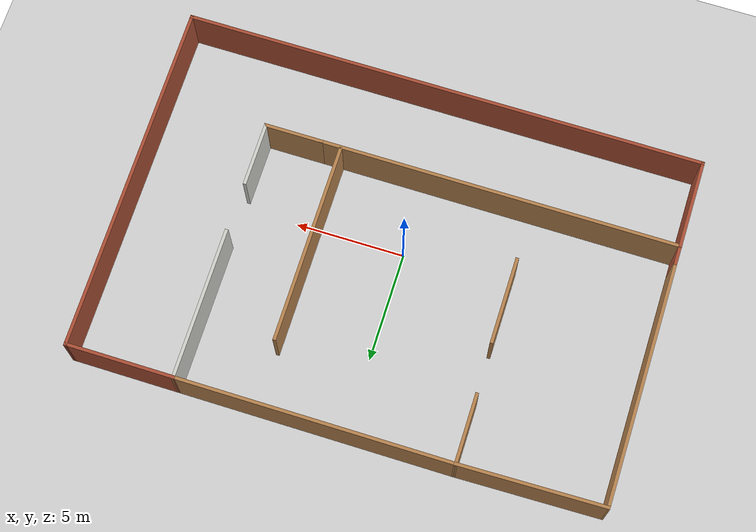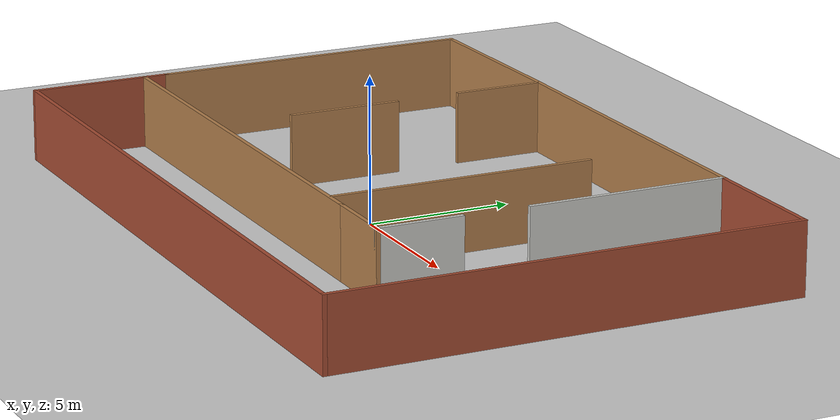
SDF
<sdf version="1.6">
 <world name="default">
  <light name="sun" type="directional">
   <pose>0 0 10 0 -0 0</pose>
   <diffuse>0.8 0.8 0.8 1</diffuse>
   <specular>0.2 0.2 0.2 1</specular>
   <attenuation>
    <range>1000</range>
    <constant>0.9</constant>
    <linear>0.01</linear>
    <quadratic>0.001</quadratic>
   </attenuation>
   <direction>-0.5 0.1 -0.9</direction>
  </light>
  <model name="ground_plane">
   <static>1</static>
   <link name="link">
    <collision name="collision">
     <geometry><plane><normal>0 0 1</normal><size>100 100</size></plane></geometry>
     <surface>
      <contact><collide_bitmask>65535</collide_bitmask></contact>
      <friction><ode><mu>100</mu><mu2>50</mu2></ode></friction>
     </surface>
    </collision>
    <visual name="visual">
     <cast_shadows>0</cast_shadows>
     <geometry><plane><normal>0 0 1</normal><size>100 100</size></plane></geometry>
     <material>
      <script><uri>file://media/materials/scripts/gazebo.material</uri><name>Gazebo/Grey</name></script>
     </material>
    </visual>
   </link>
  </model>
  <gravity>0 0 -9.8</gravity>
  <magnetic_field>6e-06 2.3e-05 -4.2e-05</magnetic_field>
  <atmosphere type="adiabatic"/>
  <physics name="default_physics" default="0" type="ode">
   <max_step_size>0.001</max_step_size>
   <real_time_factor>1</real_time_factor>
   <real_time_update_rate>1000</real_time_update_rate>
  </physics>
  <scene><ambient>0.4 0.4 0.4 1</ambient><background>0.7 0.7 0.7 1</background><shadows>1</shadows></scene>
  <audio><device>default</device></audio>
  <spherical_coordinates>
   <surface_model>EARTH_WGS84</surface_model>
   <latitude_deg>0</latitude_deg>
   <longitude_deg>0</longitude_deg>
   <elevation>0</elevation>
   <heading_deg>0</heading_deg>
  </spherical_coordinates>
  <model name="Room">
   <pose>0.39523 0.775951 0 0 -0 0</pose>
   <link name="Wall_11">
    <collision name="Wall_11_Collision">
     <geometry><box><size>7 0.15 2.5</size></box></geometry>
     <pose>0 0 1.25 0 -0 0</pose>
    </collision>
    <visual name="Wall_11_Visual">
     <pose>0 0 1.25 0 -0 0</pose>
     <geometry><box><size>7 0.15 2.5</size></box></geometry>
     <material>
      <script><uri>file://media/materials/scripts/gazebo.material</uri><name>Gazebo/CeilingTiled</name></script>
      <ambient>1 1 1 1</ambient>
     </material>
     <meta><layer>0</layer></meta>
    </visual>
    <pose>7.07641 4.62496 0 0 -0 1.5708</pose>
   </link>
   <link name="Wall_24">
    <collision name="Wall_24_Collision">
     <geometry><box><size>3.25 0.15 2.5</size></box></geometry>
     <pose>0 0 1.25 0 -0 0</pose>
    </collision>
    <visual name="Wall_24_Visual">
     <pose>0 0 1.25 0 -0 0</pose>
     <geometry><box><size>3.25 0.15 2.5</size></box></geometry>
     <material>
      <script><uri>file://media/materials/scripts/gazebo.material</uri><name>Gazebo/Wood</name></script>
      <ambient>1 1 1 1</ambient>
     </material>
     <meta><layer>0</layer></meta>
    </visual>
    <pose>-5.3839 6.48695 0 0 -0 -1.5708</pose>
   </link>
   <link name="Wall_26">
    <collision name="Wall_26_Collision">
     <geometry><box><size>4 0.15 2.5</size></box></geometry>
     <pose>0 0 1.25 0 -0 0</pose>
    </collision>
    <visual name="Wall_26_Visual">
     <pose>0 0 1.25 0 -0 0</pose>
     <geometry><box><size>4 0.15 2.5</size></box></geometry>
     <material>
      <script><uri>file://media/materials/scripts/gazebo.material</uri><name>Gazebo/Wood</name></script>
      <ambient>1 1 1 1</ambient>
     </material>
     <meta><layer>0</layer></meta>
    </visual>
    <pose>-5.34345 0.609995 0 0 -0 -1.5708</pose>
   </link>
   <link name="Wall_28">
    <collision name="Wall_28_Collision">
     <geometry><box><size>5 0.15 2.5</size></box></geometry>
     <pose>0 0 1.25 0 -0 0</pose>
    </collision>
    <visual name="Wall_28_Visual">
     <pose>0 0 1.25 0 -0 0</pose>
     <geometry><box><size>5 0.15 2.5</size></box></geometry>
     <material>
      <script><uri>file://media/materials/scripts/gazebo.material</uri><name>Gazebo/Bricks</name></script>
      <ambient>1 1 1 1</ambient>
     </material>
     <meta><layer>0</layer></meta>
    </visual>
    <pose>9.50141 8.04996 0 0 -0 0</pose>
   </link>
   <link name="Wall_29">
    <collision name="Wall_29_Collision">
     <geometry><box><size>16.25 0.15 2.5</size></box></geometry>
     <pose>0 0 1.25 0 -0 0</pose>
    </collision>
    <visual name="Wall_29_Visual">
     <pose>0 0 1.25 0 -0 0</pose>
     <geometry><box><size>16.25 0.15 2.5</size></box></geometry>
     <material>
      <script><uri>file://media/materials/scripts/gazebo.material</uri><name>Gazebo/Bricks</name></script>
      <ambient>1 1 1 1</ambient>
     </material>
     <meta><layer>0</layer></meta>
    </visual>
    <pose>11.9264 -3.9e-05 0 0 -0 -1.5708</pose>
   </link>
   <link name="Wall_30">
    <collision name="Wall_30_Collision">
     <geometry><box><size>24 0.15 2.5</size></box></geometry>
     <pose>0 0 1.25 0 -0 0</pose>
    </collision>
    <visual name="Wall_30_Visual">
     <pose>0 0 1.25 0 -0 0</pose>
     <geometry><box><size>24 0.15 2.5</size></box></geometry>
     <material>
      <script><uri>file://media/materials/scripts/gazebo.material</uri><name>Gazebo/Bricks</name></script>
      <ambient>1 1 1 1</ambient>
     </material>
     <meta><layer>0</layer></meta>
    </visual>
    <pose>0.001414 -8.05004 0 0 -0 3.14159</pose>
   </link>
   <link name="Wall_31">
    <collision name="Wall_31_Collision">
     <geometry><box><size>5 0.15 2.5</size></box></geometry>
     <pose>0 0 1.25 0 -0 0</pose>
    </collision>
    <visual name="Wall_31_Visual">
     <pose>0 0 1.25 0 -0 0</pose>
     <geometry><box><size>5 0.15 2.5</size></box></geometry>
     <material>
      <script><uri>file://media/materials/scripts/gazebo.material</uri><name>Gazebo/Bricks</name></script>
      <ambient>1 1 1 1</ambient>
     </material>
     <meta><layer>0</layer></meta>
    </visual>
    <pose>-11.9236 -5.62504 0 0 -0 1.5708</pose>
   </link>
   <link name="Wall_37">
    <collision name="Wall_37_Collision">
     <geometry><box><size>11.25 0.15 2.5</size></box></geometry>
     <pose>0 0 1.25 0 -0 0</pose>
    </collision>
    <visual name="Wall_37_Visual">
     <pose>0 0 1.25 0 -0 0</pose>
     <geometry><box><size>11.25 0.15 2.5</size></box></geometry>
     <material>
      <script><uri>file://media/materials/scripts/gazebo.material</uri><name>Gazebo/Wood</name></script>
      <ambient>1 1 1 1</ambient>
     </material>
     <meta><layer>0</layer></meta>
    </visual>
    <pose>-11.9236 2.34996 0 0 -0 1.5708</pose>
   </link>
   <link name="Wall_38">
    <collision name="Wall_38_Collision">
     <geometry><box><size>6.69112 0.15 2.5</size></box></geometry>
     <pose>0 0 1.25 0 -0 0</pose>
    </collision>
    <visual name="Wall_38_Visual">
     <pose>0 0 1.25 0 -0 0</pose>
     <geometry><box><size>6.69112 0.15 2.5</size></box></geometry>
     <material>
      <script><uri>file://media/materials/scripts/gazebo.material</uri><name>Gazebo/Wood</name></script>
      <ambient>1 1 1 1</ambient>
     </material>
     <meta><layer>0</layer></meta>
    </visual>
    <pose>-8.65375 7.96846 0 0 -0 0.020945</pose>
   </link>
   <link name="Wall_39">
    <collision name="Wall_39_Collision">
     <geometry><box><size>12.6103 0.15 2.5</size></box></geometry>
     <pose>0 0 1.25 0 -0 0</pose>
    </collision>
    <visual name="Wall_39_Visual">
     <pose>0 0 1.25 0 -0 0</pose>
     <geometry><box><size>12.6103 0.15 2.5</size></box></geometry>
     <material>
      <script><uri>file://media/materials/scripts/gazebo.material</uri><name>Gazebo/Wood</name></script>
      <ambient>1 1 1 1</ambient>
     </material>
     <meta><layer>0</layer></meta>
    </visual>
    <pose>0.846255 8.04346 0 0 -0 0.001044</pose>
   </link>
   <link name="Wall_41">
    <collision name="Wall_41_Collision">
     <geometry><box><size>16.5 0.15 2.5</size></box></geometry>
     <pose>0 0 1.25 0 -0 0</pose>
    </collision>
    <visual name="Wall_41_Visual">
     <pose>0 0 1.25 0 -0 0</pose>
     <geometry><box><size>16.5 0.15 2.5</size></box></geometry>
     <material>
      <script><uri>file://media/materials/scripts/gazebo.material</uri><name>Gazebo/Wood</name></script>
      <ambient>1 1 1 1</ambient>
     </material>
     <meta><layer>0</layer></meta>
    </visual>
    <pose>-3.75142 -4.02291 0 0 -0 3.14159</pose>
   </link>
   <link name="Wall_51">
    <collision name="Wall_51_Collision">
     <geometry><box><size>9.25 0.15 2.5</size></box></geometry>
     <pose>0 0 1.25 0 -0 0</pose>
    </collision>
    <visual name="Wall_51_Visual">
     <pose>0 0 1.25 0 -0 0</pose>
     <geometry><box><size>9.25 0.15 2.5</size></box></geometry>
     <material>
      <script><uri>file://media/materials/scripts/gazebo.material</uri><name>Gazebo/Wood</name></script>
      <ambient>1 1 1 1</ambient>
     </material>
     <meta><layer>0</layer></meta>
    </visual>
    <pose>3.51632 0.612103 0 0 -0 1.5708</pose>
   </link>
   <link name="Wall_8">
    <collision name="Wall_8_Collision">
     <geometry><box><size>2.75 0.15 2.5</size></box></geometry>
     <pose>0 0 1.25 0 -0 0</pose>
    </collision>
    <visual name="Wall_8_Visual">
     <pose>0 0 1.25 0 -0 0</pose>
     <geometry><box><size>2.75 0.15 2.5</size></box></geometry>
     <material>
      <script><uri>file://media/materials/scripts/gazebo.material</uri><name>Gazebo/Wood</name></script>
      <ambient>1 1 1 1</ambient>
     </material>
     <meta><layer>0</layer></meta>
    </visual>
    <pose>5.72359 -4.02291 0 0 -0 0</pose>
   </link>
   <link name="Wall_9">
    <collision name="Wall_9_Collision">
     <geometry><box><size>3 0.15 2.5</size></box></geometry>
     <pose>0 0 1.25 0 -0 0</pose>
    </collision>
    <visual name="Wall_9_Visual">
     <pose>0 0 1.25 0 -0 0</pose>
     <geometry><box><size>3 0.15 2.5</size></box></geometry>
     <material>
      <script><uri>file://media/materials/scripts/gazebo.material</uri><name>Gazebo/CeilingTiled</name></script>
      <ambient>1 1 1 1</ambient>
     </material>
     <meta><layer>0</layer></meta>
    </visual>
    <pose>7.02358 -2.59791 0 0 -0 1.5708</pose>
   </link>
   <static>1</static>
  </model>
 </world>
</sdf>
